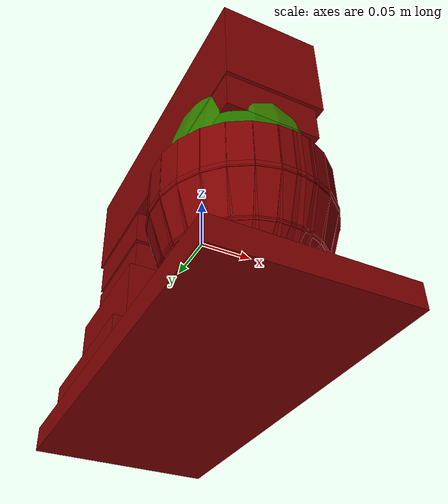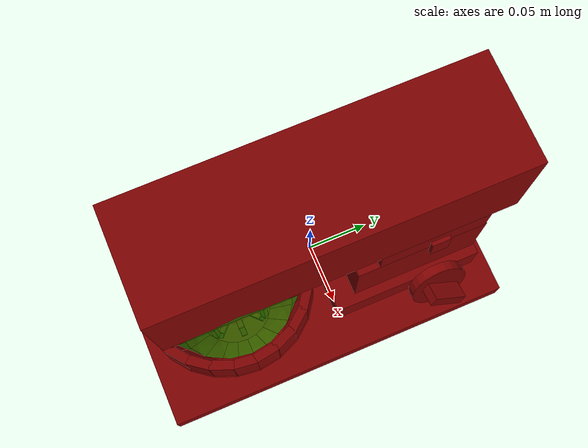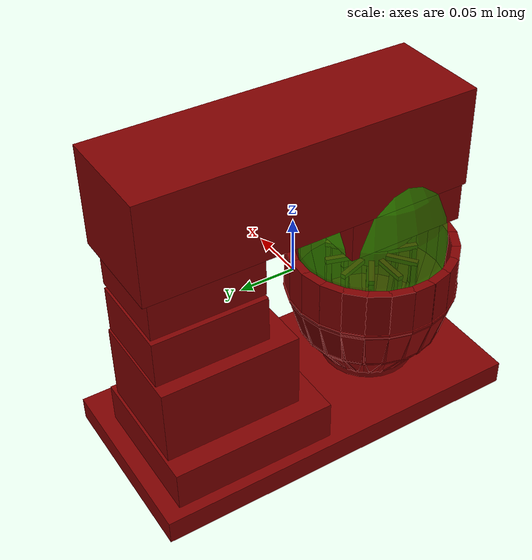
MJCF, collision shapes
<?xml version='1.0' encoding='UTF-8'?>
<mujoco model="model">
  <option timestep="0.002" gravity="0.0 0.0 -9.81"/>
  <compiler angle="radian"/>
  <asset>
    <mesh file="visuals/blender.obj" name="blender_vis"/>
    <mesh file="visuals/bowl.obj" name="bowl_vis"/>
    <mesh file="visuals/button_head_lock.obj" name="button_head_lock_vis"/>
    <mesh file="visuals/head.obj" name="head_vis"/>
    <mesh file="visuals/knob_speed.obj" name="knob_speed_vis"/>
    <mesh file="visuals/Body001.obj" name="Body001_vis"/>
    <texture file="visuals/T_BC001.png" name="Body001_material" type="2d"/>
    <material name="Body001_material" rgba="1 1 1 1.0" texture="Body001_material" shininess="0.5" specular="0.5"/>
    <texture file="visuals/T_BC001.png" name="bowl_material" type="2d"/>
    <material name="bowl_material" rgba="1 1 1 1.0" texture="bowl_material" shininess="0.5" specular="1"/>
    <texture file="visuals/T_BC001.png" name="button_head_lock_material" type="2d"/>
    <material name="button_head_lock_material" rgba="1 1 1 1.0" texture="button_head_lock_material" shininess="0.5" specular="0.3103448502657381"/>
    <texture file="visuals/T_BC001.png" name="head_material" type="2d"/>
    <material name="head_material" rgba="1 1 1 1.0" texture="head_material" shininess="0.5" specular="0.5"/>
    <texture file="visuals/T_BC001.png" name="blender_material" type="2d"/>
    <material name="blender_material" rgba="1 1 1 1.0" texture="blender_material" shininess="0.5" specular="1"/>
    <texture file="visuals/T_BC001.png" name="knob_speed_material" type="2d"/>
    <material name="knob_speed_material" rgba="1 1 1 1.0" texture="knob_speed_material" shininess="0.5" specular="0.3103448502657381"/>
  </asset>
  <default>
    <default class="visual">
      <geom conaffinity="0" contype="0" group="1" type="mesh"/>
    </default>
    <default class="collision">
      <geom group="0" rgba="0.5 0 0 0.5"/>
    </default>
    <default class="spawn">
      <geom group="0" rgba="1 1 1 0.5" contype="0" conaffinity="0"/>
      <site group="0" rgba="1 1 1 0.5"/>
    </default>
    <default class="region">
      <geom group="1" conaffinity="0" contype="0" rgba="0 1 0 0"/>
    </default>
  </default>
  <worldbody>
    <body>
      <body name="object">
        <geom mesh="Body001_vis" type="mesh" solimp="0.998 0.998 0.001" solref="0.001 1" friction="0.95 0.3 0.1" class="visual" material="Body001_material"/>
        <geom type="box" pos="-0.00263102 -0.00026402 -0.13759668" size="0.1709049642086029 0.08239562809467316 0.010993502102792263" quat="0.7071068286895752 0.0 0.0 0.7071067094802856" class="collision"/>
        <geom type="box" pos="-0.01502401 0.08306274 -0.10841372" size="0.07269035279750824 0.059690117835998535 0.018418438732624054" quat="0.7071068286895752 0.0 0.0 0.7071067094802856" class="collision"/>
        <geom type="box" pos="-0.01058115 0.09210893 -0.05431392" size="0.06146044284105301 0.04611232131719589 0.03501715511083603" quat="0.7071068286895752 0.0 0.0 0.7071067094802856" class="collision"/>
        <geom type="box" pos="-0.00448368 0.10128994 0.00189828" size="0.050663091242313385 0.040072131901979446 0.02101229503750801" quat="0.7071068286895752 0.0 0.0 0.7071067094802856" class="collision"/>
        <body name="bowl">
          <geom mesh="bowl_vis" type="mesh" solimp="0.998 0.998 0.001" solref="0.001 1" friction="0.95 0.3 0.1" class="visual" material="bowl_material"/>
          <geom type="cylinder" pos="-0.00304950 -0.07910326 -0.11666697" size="0.04229027032852173 0.005284236278384924" quat="0.7071068286895752 0.0 0.0 0.7071067094802856" class="collision"/>
          <geom type="box" pos="-0.00304949 -0.15065952 -0.02372937" size="0.003976119216531515 0.010349423624575138 0.02300979197025299" quat="5.338507946817117e-08 0.7071068286895752 0.7071067094802856 5.338507591545749e-08" class="collision"/>
          <geom type="box" pos="-0.00304950 -0.14540844 -0.06316024" size="0.003976119216531515 0.010349423624575138 0.02300979010760784" quat="0.0975811630487442 -0.7003413438796997 -0.7003412246704102 -0.09758107364177704" class="collision"/>
          <geom type="box" pos="-0.00304950 -0.12736380 -0.10001330" size="0.003976119216531515 0.010349423624575138 0.02300979197025299" quat="0.21898102760314941 -0.6723447442054749 -0.6723445653915405 -0.21898098289966583" class="collision"/>
          <geom type="box" pos="-0.02124207 -0.14830823 -0.02372937" size="0.003976119216531515 0.010349424555897713 0.02300979197025299" quat="5.978750294843849e-08 0.7919096946716309 0.6106382608413696 4.6101927608788174e-08" class="collision"/>
          <geom type="box" pos="-0.01990702 -0.14322971 -0.06316024" size="0.003976119216531515 0.010349423624575138 0.02300979197025299" quat="0.08426856249570847 -0.7843326330184937 -0.6047959327697754 -0.10928399115800858" class="collision"/>
          <geom type="box" pos="-0.01531933 -0.12577800 -0.10001330" size="0.003976119216531515 0.010349424555897713 0.02300979010760784" quat="0.18910621106624603 -0.7529784440994263 -0.580618679523468 -0.24524329602718353" class="collision"/>
          <geom type="box" pos="-0.03869801 -0.14114745 -0.02372937" size="0.003976119216531515 0.010349424555897713 0.02300979197025299" quat="6.534362029242402e-08 0.8655024170875549 0.5009047389030457 3.781724799978292e-08" class="collision"/>
          <geom type="box" pos="-0.03608198 -0.13659440 -0.06316024" size="0.003976119216531515 0.010349422693252563 0.02300979197025299" quat="0.069125235080719 -0.8572213649749756 -0.496112197637558 -0.11943983286619186" class="collision"/>
          <geom type="box" pos="-0.02709235 -0.12094846 -0.10001330" size="0.003976119216531515 0.010349424555897713 0.02300979010760784" quat="0.15512323379516602 -0.8229533433914185 -0.47627967596054077 -0.2680339813232422" class="collision"/>
          <geom type="box" pos="-0.05374845 -0.12959993 -0.02372937" size="0.003976119216531515 0.010349423624575138 0.02300979197025299" quat="6.977980859801391e-08 0.9242616295814514 0.3817597031593323 2.8822062958511196e-08" class="collision"/>
          <geom type="box" pos="-0.05002796 -0.12589429 -0.06316024" size="0.003976119216531515 0.010349423624575138 0.02300979197025299" quat="0.05268316715955734 -0.9154183864593506 -0.3781071603298187 -0.1275486797094345" class="collision"/>
          <geom type="box" pos="-0.03724300 -0.11316033 -0.10001330" size="0.003976119216531515 0.010349423624575138 0.02300979010760784" quat="0.11822569370269775 -0.8788238763809204 -0.36299195885658264 -0.2862308621406555" class="collision"/>
          <geom type="box" pos="-0.06498187 -0.11494567 -0.02372937" size="0.003976118750870228 0.010349423624575138 0.02300979197025299" quat="7.291522763352987e-08 0.9657914638519287 0.2593199610710144 1.9578111576379342e-08" class="collision"/>
          <geom type="box" pos="-0.06043703 -0.11231542 -0.06316024" size="0.003976119216531515 0.010349423624575138 0.02300979197025299" quat="0.03578639775514603 -0.9565508961677551 -0.25683891773223877 -0.13327978551387787" class="collision"/>
          <geom type="box" pos="-0.04481929 -0.10327689 -0.10001330" size="0.003976119682192802 0.010349422693252563 0.02300979010760784" quat="0.08030778914690018 -0.918312132358551 -0.2465713620185852 -0.2990921139717102" class="collision"/>
          <geom type="box" pos="-0.07230007 -0.09712147 -0.02372937" size="0.003976119216531515 0.010349422693252563 0.02300979197025299" quat="7.488726083693109e-08 0.9919118285179138 0.12692882120609283 9.58285539809367e-09" class="collision"/>
          <geom type="box" pos="-0.06721819 -0.09579923 -0.06316024" size="0.003976119216531515 0.010349422693252563 0.023009788244962692" quat="0.017516322433948517 -0.982421338558197 -0.12571431696414948 -0.13688448071479797" class="collision"/>
          <geom type="box" pos="-0.04975498 -0.09125550 -0.10001330" size="0.003976119216531515 0.010349421761929989 0.02300979010760784" quat="-0.03930802270770073 0.9431483149528503 0.12068886309862137 0.3071812391281128" class="collision"/>
          <geom type="box" pos="-0.07460406 -0.07861105 -0.02372937" size="0.003976119216531515 0.010349423624575138 0.02300979197025299" quat="7.523777156848155e-08 -0.9999940991401672 0.0034396161790937185 -7.575713567575804e-08" class="collision"/>
          <geom type="box" pos="-0.06935310 -0.07864717 -0.06316024" size="0.003976119216531515 0.010349423624575138 0.02300979197025299" quat="-0.00047459450433962047 -0.9904263019561768 0.0034066960215568542 -0.13799984753131866" class="collision"/>
          <geom type="box" pos="-0.05130889 -0.07877129 -0.10001330" size="0.003976119216531515 0.010349423624575138 0.02300979010760784" quat="-0.0010650918120518327 -0.950833261013031 0.0032703832257539034 -0.3096841275691986" class="collision"/>
          <geom type="box" pos="-0.07181668 -0.05932016 -0.02372937" size="0.003976119216531515 0.010349424555897713 0.02300979197025299" quat="6.421895193398086e-08 -0.9902077317237854 0.13960184156894684 -8.529826089898052e-08" class="collision"/>
          <geom type="box" pos="-0.06677028 -0.06077193 -0.06316024" size="0.003976119216531515 0.010349424555897713 0.02300979010760784" quat="-0.019265078008174896 -0.9807335138320923 0.1382662057876587 -0.13664931058883667" class="collision"/>
          <geom type="box" pos="-0.04942896 -0.06576072 -0.10001330" size="0.003976119682192802 0.010349423624575138 0.02300979010760784" quat="-0.043232668191194534 -0.9415280222892761 0.13273882865905762 -0.3066534996032715" class="collision"/>
          <geom type="box" pos="-0.06405881 -0.04171130 -0.02372937" size="0.003976119216531515 0.010349424555897713 0.02300979197025299" quat="9.31582420093946e-08 -0.962446391582489 0.2714718282222748 5.2167163033800534e-08" class="collision"/>
          <geom type="box" pos="-0.05958171 -0.04445527 -0.06316024" size="0.003976119216531515 0.010349424555897713 0.02300979197025299" quat="-0.03746318817138672 -0.9532378911972046 0.2688741981983185 -0.13281826674938202" class="collision"/>
          <geom type="box" pos="-0.04419673 -0.05388456 -0.10001330" size="0.003976119216531515 0.010349425487220287 0.02300979197025299" quat="-0.08407089114189148 -0.9151315093040466 0.2581257224082947 -0.2980562448501587" class="collision"/>
          <geom type="box" pos="-0.05199172 -0.02690218 -0.02372937" size="0.003976119216531515 0.010349423624575138 0.02300979197025299" quat="3.926531277897993e-08 -0.9175969362258911 0.3975120782852173 -9.92879733985319e-08" class="collision"/>
          <geom type="box" pos="-0.04840016 -0.03073289 -0.06316024" size="0.003976119216531515 0.010349423624575138 0.02300979197025299" quat="0.054857008159160614 0.9088174700737 -0.3937087655067444 0.12662898004055023" class="collision"/>
          <geom type="box" pos="-0.03605818 -0.04389667 -0.10001330" size="0.003976119216531515 0.010349423624575138 0.02300979010760784" quat="-0.12310383468866348 -0.8724868893623352 0.37796980142593384 -0.28416699171066284" class="collision"/>
          <geom type="box" pos="-0.03626272 -0.01572207 -0.02372937" size="0.003976119216531515 0.010349423624575138 0.02300979197025299" quat="1.0367580927095332e-07 -0.8556152582168579 0.5176123380661011 2.5518522406287047e-08" class="collision"/>
          <geom type="box" pos="-0.03382541 -0.02037322 -0.06316024" size="0.003976119216531515 0.010349422693252563 0.02300979010760784" quat="0.07143085449934006 0.8474288582801819 -0.5126599073410034 0.11807534098625183" class="collision"/>
          <geom type="box" pos="-0.02544988 -0.03635634 -0.10001330" size="0.003976119216531515 0.010349422693252563 0.02300979010760784" quat="0.1602972000837326 0.8135523200035095 -0.49216586351394653 0.2649720311164856" class="collision"/>
          <geom type="box" pos="-0.01813225 -0.00915468 -0.02372937" size="0.003976119216531515 0.010349423624575138 0.02300979197025299" quat="1.1316277692685617e-08 -0.7780683040618896 0.628179669380188 -1.0616876977564971e-07" class="collision"/>
          <geom type="box" pos="-0.01702541 -0.01428778 -0.06316024" size="0.003976119216531515 0.010349421761929989 0.02300979010760784" quat="0.0866890698671341 0.7706241011619568 -0.6221690773963928 0.10737390071153641" class="collision"/>
          <geom type="box" pos="-0.01322194 -0.03192701 -0.10001330" size="0.003976119216531515 0.010349422693252563 0.02300979197025299" quat="0.19453831017017365 0.73981773853302 -0.5972975492477417 0.2409568578004837" class="collision"/>
          <geom type="box" pos="0.00130552 -0.00767969 -0.02372937" size="0.003976119216531515 0.010349423624575138 0.02300979197025299" quat="8.493893943750663e-08 0.6852510571479797 -0.7283069491386414 1.989968190230229e-08" class="collision"/>
          <geom type="box" pos="0.00098593 -0.01292103 -0.06316024" size="0.003976119216531515 0.010349423624575138 0.02300979010760784" quat="0.1005067378282547 0.6786947250366211 -0.7213385701179504 0.0945650264620781" class="collision"/>
          <geom type="box" pos="-0.00011229 -0.03093222 -0.10001330" size="0.003976119216531515 0.010349423624575138 0.02300979010760784" quat="0.22554637491703033 0.6515634655952454 -0.6925024390220642 0.21221278607845306" class="collision"/>
          <geom type="box" pos="0.02069446 -0.01160128 -0.02372937" size="0.003976119682192802 0.010349422693252563 0.02300979197025299" quat="8.687420205433227e-08 0.578004002571106 -0.8160339593887329 7.968111503942055e-09" class="collision"/>
          <geom type="box" pos="0.01895204 -0.01655484 -0.06316024" size="0.003976119216531515 0.010349422693252563 0.02300979010760784" quat="0.11261321604251862 0.5724734663963318 -0.8082264065742493 0.07976493239402771" class="collision"/>
          <geom type="box" pos="0.01296443 -0.03357711 -0.10001330" size="0.003976119216531515 0.010349422693252563 0.02300979010760784" quat="0.2527140974998474 0.5495887994766235 -0.7759168148040771 0.178999662399292" class="collision"/>
          <geom type="box" pos="0.03790922 -0.02042894 -0.02372937" size="0.003976119216531515 0.010349423624575138 0.02300979197025299" quat="8.71539143076916e-08 0.4623853862285614 -0.8866790533065796 -3.8488536802105955e-09" class="collision"/>
          <geom type="box" pos="0.03490352 -0.02473469 -0.06316024" size="0.003976119216531515 0.010349423624575138 0.023009788244962692" quat="0.12236227095127106 0.4579613208770752 -0.8781954646110535 0.06380952894687653" class="collision"/>
          <geom type="box" pos="0.02457478 -0.03953085 -0.10001330" size="0.003976119216531515 0.010349424555897713 0.02300979010760784" quat="0.27459195256233215 0.4396542012691498 -0.8430888652801514 0.14319434762001038" class="collision"/>
          <geom type="box" pos="0.05202189 -0.03341481 -0.02372937" size="0.003976119216531515 0.010349424555897713 0.02300979197025299" quat="8.585203659094987e-08 0.3393933176994324 -0.9406445622444153 -1.5493380800535306e-08" class="collision"/>
          <geom type="box" pos="0.04798055 -0.03676761 -0.06316024" size="0.003976119216531515 0.010349424555897713 0.02300979010760784" quat="0.1298094391822815 0.33614611625671387 -0.9316446185112 0.04683651030063629" class="collision"/>
          <geom type="box" pos="0.03409297 -0.04828909 -0.10001330" size="0.003976119216531515 0.010349423624575138 0.02300979010760784" quat="0.2913043797016144 0.3227081000804901 -0.8944015502929688 0.10510529577732086" class="collision"/>
          <geom type="box" pos="0.06244060 -0.05027032 -0.02372937" size="0.003976119682192802 0.010349422693252563 0.02300979197025299" quat="6.488117776370927e-08 -0.20588085055351257 0.9785770773887634 5.831853755466909e-08" class="collision"/>
          <geom type="box" pos="0.05763470 -0.05238619 -0.06316024" size="0.003976119216531515 0.010349422693252563 0.02300979197025299" quat="0.13504426181316376 0.2039112001657486 -0.969214141368866 0.028411775827407837" class="collision"/>
          <geom type="box" pos="0.04111978 -0.05965715 -0.10001330" size="0.003976118750870228 0.010349422693252563 0.02300979010760784" quat="0.30305153131484985 0.19575947523117065 -0.9304691553115845 0.06375841796398163" class="collision"/>
          <geom type="box" pos="0.06768397 -0.06828337 -0.02372937" size="0.003976119682192802 0.010349423624575138 0.02300979197025299" quat="7.85948728321273e-08 0.07582248002290726 -0.9971213340759277 -3.7861092039293e-08" class="collision"/>
          <geom type="box" pos="0.06249328 -0.06907738 -0.06316024" size="0.003976119216531515 0.010349423624575138 0.02300979197025299" quat="0.13760340213775635 0.07509711384773254 -0.9875810146331787 0.010463518090546131" class="collision"/>
          <geom type="box" pos="0.04465612 -0.07180591 -0.10001330" size="0.003976119216531515 0.010349424555897713 0.02300979197025299" quat="0.30879443883895874 0.07209458202123642 -0.948101818561554 0.023481084033846855" class="collision"/>
          <geom type="box" pos="0.06799012 -0.08768629 -0.02372937" size="0.003976119216531515 0.010349423624575138 0.02300979197025299" quat="7.989759609472458e-08 0.060082364827394485 0.9981934428215027 7.08253722336849e-08" class="collision"/>
          <geom type="box" pos="0.06277695 -0.08705644 -0.06316024" size="0.003976119216531515 0.010349423624575138 0.02300979197025299" quat="0.13775135576725006 -0.059507571160793304 -0.9886428117752075 -0.008291350677609444" class="collision"/>
          <geom type="box" pos="0.04486258 -0.08489207 -0.10001330" size="0.003976119216531515 0.010349423624575138 0.02300979010760784" quat="0.30912643671035767 -0.05712919309735298 -0.9491211175918579 -0.018606821075081825" class="collision"/>
          <geom type="box" pos="0.06330375 -0.10589025 -0.02372937" size="0.003976119216531515 0.010349424555897713 0.02300979197025299" quat="8.850817323491356e-08 0.19067265093326569 0.9816536903381348 5.971737948584632e-08" class="collision"/>
          <geom type="box" pos="0.05843449 -0.10392454 -0.06316024" size="0.003976119216531515 0.010349424555897713 0.02300979197025299" quat="0.13546887040138245 -0.18884827196598053 -0.972261369228363 -0.026312870904803276" class="collision"/>
          <geom type="box" pos="0.04170189 -0.09716958 -0.10001330" size="0.003976119682192802 0.010349424555897713 0.02300979010760784" quat="0.304004430770874 -0.18129919469356537 -0.9333944320678711 -0.059048671275377274" class="collision"/>
          <geom type="box" pos="0.05396891 -0.12233748 -0.02372937" size="0.003976119216531515 0.010349423624575138 0.02300979197025299" quat="4.749773907519739e-08 -0.3187215328216553 -0.947848379611969 -9.562342739855012e-08" class="collision"/>
          <geom type="box" pos="0.04978468 -0.11916482 -0.06316024" size="0.003976119216531515 0.010349423624575138 0.02300979010760784" quat="0.13080373406410217 -0.3156718313694 -0.9387795925140381 -0.04398368299007416" class="collision"/>
          <geom type="box" pos="0.03540608 -0.10826227 -0.10001330" size="0.003976119216531515 0.010349424555897713 0.02300979010760784" quat="0.2935352623462677 -0.30305323004722595 -0.9012510180473328 -0.09870365262031555" class="collision"/>
          <geom type="box" pos="0.04002121 -0.13624528 -0.02372937" size="0.003976119216531515 0.010349423624575138 0.02300979197025299" quat="3.38849410752573e-08 -0.44614240527153015 -0.8949620127677917 -1.0125055638354752e-07" class="collision"/>
          <geom type="box" pos="0.03686051 -0.13205200 -0.06316024" size="0.003976119216531515 0.010349424555897713 0.02300979010760784" quat="0.12350531667470932 -0.441873699426651 -0.8863991498947144 -0.0615679994225502" class="collision"/>
          <geom type="box" pos="0.02599915 -0.11764227 -0.10001330" size="0.003976119216531515 0.010349424555897713 0.02300979010760784" quat="0.27715709805488586 -0.42420992255210876 -0.8509644865989685 -0.13816407322883606" class="collision"/>
          <geom type="box" pos="0.02336821 -0.14560440 -0.02372937" size="0.003976119216531515 0.010349423624575138 0.02300979197025299" quat="1.0486750312566073e-07 0.561610221862793 0.8274019360542297 2.0066716288624775e-08" class="collision"/>
          <geom type="box" pos="0.02142957 -0.14072432 -0.06316024" size="0.003976119216531515 0.010349423624575138 0.02300979197025299" quat="0.11418197304010391 -0.5562368035316467 -0.8194854855537415 -0.07750263810157776" class="collision"/>
          <geom type="box" pos="0.01476767 -0.12395446 -0.10001330" size="0.003976119216531515 0.010349423624575138 0.02300979197025299" quat="0.2562347650527954 -0.5340012311935425 -0.786725640296936 -0.17392291128635406" class="collision"/>
          <geom type="box" pos="0.00907563 -0.14962475 -0.02372937" size="0.003976119216531515 0.010349424555897713 0.02300979197025299" quat="9.078947371676804e-09 -0.6444187164306641 -0.7646728157997131 -1.0638343894697755e-07" class="collision"/>
          <geom type="box" pos="0.00818583 -0.14444962 -0.06316024" size="0.003976119216531515 0.010349424555897713 0.02300979383289814" quat="0.10552549362182617 -0.6382529139518738 -0.757356584072113 -0.08893021941184998" class="collision"/>
          <geom type="box" pos="0.00512815 -0.12666592 -0.10001330" size="0.003976119682192802 0.010349422693252563 0.023009788244962692" quat="0.2368084043264389 -0.6127387881278992 -0.7270802855491638 -0.19956755638122559" class="collision"/>
          <geom name="reg_bowl" type="ellipsoid" pos="-0.00304942 -0.07910326 -0.00124244" size="0.06499999016523361 0.06499999761581421 0.10842452198266983" rgba="0 1 0 0.5" class="region"/>
        </body>
        <body name="button_head_lock">
          <joint axis="-1.0 0.0 0.0" pos="0.04081761 0.10171780 0.00060606" limited="true" name="button_head_lock_joint" range="0.0 0.001" type="slide" damping="1" frictionloss="1" armature=".01" stiffness="0.05"/>
          <geom mesh="button_head_lock_vis" type="mesh" solimp="0.998 0.998 0.001" solref="0.001 1" friction="0.95 0.3 0.1" class="visual" material="button_head_lock_material"/>
          <geom class="collision" type="box" pos="0.04106201 0.10170577 0.00080003" size="0.008473409339785576 0.001839453587308526 0.011159100569784641" quat="0.7069293260574341 -0.015838947147130966 -0.015838949009776115 0.7069293856620789" name="button_head_lock_main"/>
        </body>
        <body name="head">
          <joint axis="-1.0 0.0 0.0" pos="-0.00282449 0.15208399 0.02466741" limited="true" name="head_joint" range="0.0 1.5707963267948966" type="hinge" damping="1" frictionloss="1" armature=".01" stiffness="0.05"/>
          <geom mesh="head_vis" type="mesh" solimp="0.998 0.998 0.001" solref="0.001 1" friction="0.95 0.3 0.1" class="visual" material="head_material"/>
          <geom type="box" pos="0.00005516 0.00841849 0.10495447" size="0.14756841957569122 0.04622911289334297 0.043764516711235046" quat="0.7071068286895752 0.0 0.0 0.7071067094802856" class="collision"/>
          <geom type="box" pos="-0.00274797 -0.08159222 0.04760939" size="0.05458580702543259 0.04250433295965195 0.020909063518047333" quat="0.7071068286895752 0.0 0.0 0.7071067094802856" class="collision"/>
          <geom type="box" pos="-0.00448368 0.10211864 0.04445250" size="0.049797140061855316 0.040072131901979446 0.01676352322101593" quat="0.7071068286895752 0.0 0.0 0.7071067094802856" class="collision"/>
          <body name="blender">
            <joint axis="0.0 0.0 1.0" pos="-0.00308452 -0.07906523 -0.03507750" limited="false" name="blender_joint" range="0 360" type="hinge" damping="1" frictionloss="1" armature=".01" stiffness="0.05"/>
            <geom mesh="blender_vis" type="mesh" solimp="0.998 0.998 0.001" solref="0.001 1" friction="0.95 0.3 0.1" class="visual" material="blender_material"/>
            <geom type="cylinder" pos="-0.00308451 -0.07906527 0.01916311" size="0.03516204655170441 0.0049544465728104115" quat="0.7071068286895752 0.0 0.0 0.7071067094802856" class="collision"/>
            <geom type="cylinder" pos="-0.00308452 -0.07906526 -0.00110584" size="0.013840957544744015 0.0163100752979517" quat="0.7071068286895752 0.0 0.0 0.7071067094802856" class="collision"/>
            <geom type="box" pos="-0.00308452 -0.07906525 -0.01339894" size="0.00242751301266253 0.041785284876823425 0.0021297161001712084" quat="5.338507946817117e-08 0.7071067690849304 -0.7071068286895752 5.338507591545749e-08" class="collision"/>
            <geom type="box" pos="-0.04209801 -0.07906525 -0.03401914" size="0.00242751301266253 0.0022789735812693834 0.01932363398373127" quat="5.338507591545749e-08 0.7071067690849304 -0.7071068286895752 5.338507591545749e-08" class="collision"/>
            <geom type="box" pos="-0.03996233 -0.07906525 -0.06556068" size="0.00242751301266253 0.002278973814100027 0.013327241875231266" quat="0.060938019305467606 -0.7044759392738342 0.7044762372970581 -0.06093815341591835" class="collision"/>
            <geom type="box" pos="-0.02849853 -0.07906525 -0.08739068" size="0.00242751301266253 0.0022789735812693834 0.013327241875231266" quat="0.28597694635391235 -0.6466971039772034 0.6466971039772034 -0.2859770655632019" class="collision"/>
            <geom type="box" pos="-0.00308452 -0.07906525 -0.09512527" size="0.00242751301266253 0.0022789735812693834 0.017347244545817375" quat="0.5 0.5 -0.5 -0.4999999701976776" class="collision"/>
            <geom type="box" pos="0.03592898 -0.07906525 -0.03401914" size="0.00242751301266253 0.0022789735812693834 0.01932363398373127" quat="2.247644559361106e-08 0.7071067094802856 0.70710688829422 8.429369557916289e-08" class="collision"/>
            <geom type="box" pos="0.03379329 -0.07906525 -0.06556068" size="0.00242751301266253 0.0022789735812693834 0.013327241875231266" quat="0.060938190668821335 -0.704475998878479 -0.7044761776924133 0.06093814969062805" class="collision"/>
            <geom type="box" pos="0.02232950 -0.07906525 -0.08739068" size="0.00242751301266253 0.0022789735812693834 0.013327241875231266" quat="0.28597694635391235 -0.6466969847679138 -0.6466972231864929 0.2859770655632019" class="collision"/>
            <geom type="box" pos="-0.00308452 -0.07906525 -0.01339895" size="0.0024275127798318863 0.041785284876823425 0.0021297161001712084" quat="3.335276232974138e-08 0.892606794834137 -0.45083603262901306 -1.0142711204252919e-07" class="collision"/>
            <geom type="box" pos="-0.03448408 -0.10221951 -0.03401914" size="0.0024275127798318863 0.0022789735812693834 0.01932363398373127" quat="3.335276232974138e-08 0.892606794834137 -0.45083603262901306 -1.0142711204252919e-07" class="collision"/>
            <geom type="box" pos="-0.03276520 -0.10095200 -0.06556068" size="0.0024275127798318863 0.0022789735812693834 0.013327241875231266" quat="0.07692444324493408 -0.8892858624458313 0.4491589665412903 -0.03885294869542122" class="collision"/>
            <geom type="box" pos="-0.02353870 -0.09414831 -0.08739068" size="0.00242751301266253 0.0022789735812693834 0.013327241875231266" quat="0.360999196767807 -0.816349446773529 0.41232016682624817 -0.1823328733444214" class="collision"/>
            <geom type="box" pos="-0.00308452 -0.07906525 -0.09512527" size="0.00242751301266253 0.0022789735812693834 0.017347244545817375" quat="0.6311683058738708 0.6311683654785156 -0.3187892436981201 -0.31878912448883057" class="collision"/>
            <geom type="box" pos="0.02831505 -0.05591097 -0.03401914" size="0.00242751301266253 0.0022789735812693834 0.01932363398373127" quat="1.014270765153924e-07 -0.45083582401275635 -0.8926069140434265 3.335273746074563e-08" class="collision"/>
            <geom type="box" pos="0.02659616 -0.05717849 -0.06556068" size="0.00242751301266253 0.0022789735812693834 0.013327241875231266" quat="0.03885291516780853 -0.44915854930877686 -0.8892860412597656 0.07692446559667587" class="collision"/>
            <geom type="box" pos="0.01736966 -0.06398219 -0.08739068" size="0.00242751301266253 0.0022789735812693834 0.013327241875231266" quat="0.18233270943164825 -0.41231992840766907 -0.8163495063781738 0.3609994053840637" class="collision"/>
            <geom type="box" pos="-0.00308452 -0.07906525 -0.01339895" size="0.0024275127798318863 0.04178528115153313 0.0021297161001712084" quat="6.296491505963786e-08 0.988060712814331 -0.1540650725364685 -8.622809843927826e-08" class="collision"/>
            <geom type="box" pos="-0.01496222 -0.11622669 -0.03401914" size="0.0024275127798318863 0.002278973814100027 0.01932363398373127" quat="6.296491505963786e-08 0.988060712814331 -0.1540650725364685 -8.622809843927826e-08" class="collision"/>
            <geom type="box" pos="-0.01431201 -0.11419238 -0.06556068" size="0.00242751301266253 0.0022789735812693834 0.013327241875231266" quat="0.08515052497386932 -0.9843846559524536 0.15349255502223969 -0.01327737607061863" class="collision"/>
            <geom type="box" pos="-0.01082184 -0.10327281 -0.08739068" size="0.0024275132454931736 0.0022789735812693834 0.01332724280655384" quat="0.39960402250289917 -0.9036484956741333 0.14090290665626526 -0.06230898201465607" class="collision"/>
            <geom type="box" pos="-0.00308452 -0.07906525 -0.09512527" size="0.00242751301266253 0.0022789735812693834 0.017347244545817375" quat="0.6986643671989441 0.6986644864082336 -0.1089404746890068 -0.1089404821395874" class="collision"/>
            <geom type="box" pos="0.00879316 -0.04190379 -0.03401914" size="0.00242751301266253 0.0022789733484387398 0.01932363398373127" quat="6.296495058677465e-08 -0.1540646106004715 -0.9880607724189758 -8.622811265013297e-08" class="collision"/>
            <geom type="box" pos="0.00814295 -0.04393810 -0.06556068" size="0.00242751301266253 0.0022789735812693834 0.013327240943908691" quat="0.01327725313603878 -0.1534910649061203 -0.9843848943710327 0.0851505696773529" class="collision"/>
            <geom type="box" pos="0.00465279 -0.05485769 -0.08739068" size="0.00242751301266253 0.0022789735812693834 0.01332724280655384" quat="-0.06230871006846428 0.1409025490283966 0.9036484956741333 -0.3996042013168335" class="collision"/>
            <geom type="box" pos="-0.00308452 -0.07906525 -0.01339895" size="0.00242751301266253 0.04178529232740402 0.0021297161001712084" quat="8.158167474903166e-08 -0.9867917895317078 -0.161993607878685 -3.090388744908523e-08" class="collision"/>
            <geom type="box" pos="0.00938840 -0.11603117 -0.03401914" size="0.00242751301266253 0.0022789733484387398 0.01932363398373127" quat="8.158167474903166e-08 -0.9867917895317078 -0.161993607878685 -3.090388744908523e-08" class="collision"/>
            <geom type="box" pos="0.00870560 -0.11400756 -0.06556068" size="0.00242751301266253 0.0022789733484387398 0.013327241875231266" quat="0.08504132181406021 -0.9831205606460571 -0.16139091551303864 0.013960487209260464" class="collision"/>
            <geom type="box" pos="0.00504054 -0.10314544 -0.08739068" size="0.00242751301266253 0.0022789735812693834 0.013327240943908691" quat="0.3990907371044159 -0.9024880528450012 -0.14815406501293182 0.06551548093557358" class="collision"/>
            <geom type="box" pos="-0.00308452 -0.07906525 -0.09512527" size="0.00242751301266253 0.0022789735812693834 0.017347242683172226" quat="0.6977669596672058 0.6977673768997192 0.11454688012599945 0.1145467534661293" class="collision"/>
            <geom type="box" pos="-0.01555746 -0.04209934 -0.03401914" size="0.0024275127798318863 0.0022789735812693834 0.01932363398373127" quat="7.450070427239552e-08 0.1619938164949417 -0.9867917895317078 1.2230194634810232e-08" class="collision"/>
            <geom type="box" pos="-0.01487466 -0.04412293 -0.06556068" size="0.0024275125470012426 0.0022789733484387398 0.013327241875231266" quat="-0.013960471376776695 0.16139107942581177 -0.9831205606460571 0.08504126965999603" class="collision"/>
            <geom type="box" pos="-0.01120959 -0.05498506 -0.08739068" size="0.00242751301266253 0.002278973814100027 0.013327241875231266" quat="-0.06551560759544373 0.14815455675125122 -0.9024879336357117 0.39909082651138306" class="collision"/>
            <geom type="box" pos="-0.00308452 -0.07906525 -0.01339895" size="0.00242751301266253 0.041785288602113724 0.0021297161001712084" quat="4.73688643864989e-08 0.8906610012054443 0.4546680152416229 7.325850504003029e-08" class="collision"/>
            <geom type="box" pos="0.02851291 -0.10194877 -0.03401914" size="0.00242751301266253 0.0022789735812693834 0.01932363398373127" quat="4.736886083378522e-08 0.8906610012054443 0.4546680152416229 7.325851214545764e-08" class="collision"/>
            <geom type="box" pos="0.02678319 -0.10069607 -0.06556068" size="0.00242751301266253 0.0022789733484387398 0.013327241875231266" quat="0.0767567828297615 -0.8873472809791565 -0.45297664403915405 0.039183128625154495" class="collision"/>
            <geom type="box" pos="0.01749855 -0.09397194 -0.08739068" size="0.00242751301266253 0.0022789735812693834 0.013327241875231266" quat="0.36021238565444946 -0.8145697712898254 -0.415824830532074 0.18388263881206512" class="collision"/>
            <geom type="box" pos="-0.00308452 -0.07906525 -0.09512527" size="0.00242751301266253 0.0022789735812693834 0.017347242683172226" quat="0.6297923922538757 0.6297923922538757 0.32149893045425415 0.32149893045425415" class="collision"/>
            <geom type="box" pos="-0.03468196 -0.05618175 -0.03401914" size="0.00242751301266253 0.002278973814100027 0.01932363398373127" quat="6.724301471194849e-08 0.45466870069503784 -0.8906606435775757 3.432652206925013e-08" class="collision"/>
            <geom type="box" pos="-0.03295224 -0.05743445 -0.06556068" size="0.00242751301266253 0.0022789733484387398 0.013327241875231266" quat="0.039183225482702255 -0.45297691226005554 0.8873471617698669 -0.07675677537918091" class="collision"/>
            <geom type="box" pos="-0.02366760 -0.06415857 -0.08739067" size="0.00242751301266253 0.0022789735812693834 0.013327241875231266" quat="0.1838826835155487 -0.4158251881599426 0.8145696520805359 -0.3602122366428375" class="collision"/>
          </body>
        </body>
        <body name="knob_speed">
          <joint axis="-0.9659258723258972 0.0 -0.2588191032409668" pos="0.06597891 0.10264000 -0.06514909" limited="true" name="knob_speed_joint" range="0.0 4.886921905584122" type="hinge" damping="0.05" armature="0.001"/>
          <geom mesh="knob_speed_vis" type="mesh" solimp="0.998 0.998 0.001" solref="0.001 1" friction="0.95 0.3 0.1" class="visual" material="knob_speed_material"/>
          <geom type="cylinder" pos="0.05892967 0.10171824 -0.06723814" size="0.026722142472863197 0.004501237068325281" quat="0.5609855651855469 0.4304593503475189 0.43045932054519653 0.5609855055809021" class="collision"/>
          <geom class="collision" type="box" pos="0.07173176 0.10265291 -0.06379172" size="0.008618717081844807 0.005000000353902578 0.018140137195587158" quat="0.8753938674926758 0.46545517444610596 -0.11524780094623566 0.061278343200683594" name="knob_speed_main"/>
        </body>
        <geom class="region" name="reg_main" type="box" pos="-0.0028245000000000006 0.0 0.0" size="0.08190502999999999 0.16653175 0.14860245"/>
      </body>
    </body>
  </worldbody>
  <actuator>
    <motor name="button_head_lock_joint_actuator" joint="button_head_lock_joint" gear="0.5"/>
    <motor name="head_joint_actuator" joint="head_joint" gear="0.5"/>
    <motor name="knob_speed_joint_actuator" joint="knob_speed_joint" gear="0.5"/>
    <motor name="blender_joint_actuator" joint="blender_joint" gear="10"/>
  </actuator>
</mujoco>
